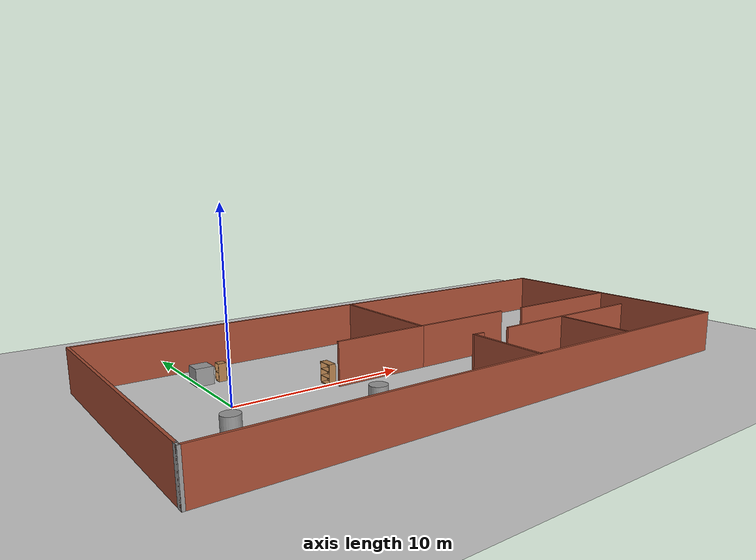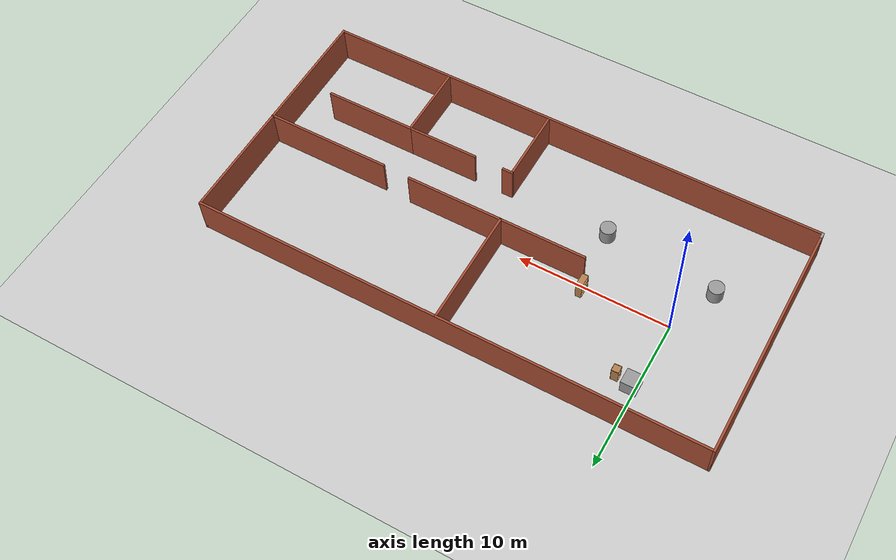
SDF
<sdf version="1.6">
 <world name="default">
  <light name="sun" type="directional">
   <pose>0 0 10 0 -0 0</pose>
   <diffuse>0.8 0.8 0.8 1</diffuse>
   <specular>0.2 0.2 0.2 1</specular>
   <attenuation>
    <range>1000</range>
    <constant>0.9</constant>
    <linear>0.01</linear>
    <quadratic>0.001</quadratic>
   </attenuation>
   <direction>-0.5 0.1 -0.9</direction>
  </light>
  <model name="ground_plane">
   <static>1</static>
   <link name="link">
    <collision name="collision">
     <geometry><plane><normal>0 0 1</normal><size>100 100</size></plane></geometry>
     <surface>
      <contact><collide_bitmask>65535</collide_bitmask></contact>
      <friction><ode><mu>100</mu><mu2>50</mu2></ode></friction>
     </surface>
    </collision>
    <visual name="visual">
     <cast_shadows>0</cast_shadows>
     <geometry><plane><normal>0 0 1</normal><size>100 100</size></plane></geometry>
     <material>
      <script><uri>file://media/materials/scripts/gazebo.material</uri><name>Gazebo/Grey</name></script>
     </material>
    </visual>
   </link>
  </model>
  <gravity>0 0 -9.8</gravity>
  <magnetic_field>6e-06 2.3e-05 -4.2e-05</magnetic_field>
  <atmosphere type="adiabatic"/>
  <physics name="default_physics" default="0" type="ode">
   <max_step_size>0.001</max_step_size>
   <real_time_factor>1</real_time_factor>
   <real_time_update_rate>1000</real_time_update_rate>
  </physics>
  <scene><ambient>0.4 0.4 0.4 1</ambient><background>0.7 0.7 0.7 1</background><shadows>1</shadows></scene>
  <audio><device>default</device></audio>
  <spherical_coordinates>
   <surface_model>EARTH_WGS84</surface_model>
   <latitude_deg>0</latitude_deg>
   <longitude_deg>0</longitude_deg>
   <elevation>0</elevation>
   <heading_deg>0</heading_deg>
  </spherical_coordinates>
  <model name="my_house2">
   <pose>11.157 -0.793133 0 0 -0 0</pose>
   <link name="Wall_1">
    <collision name="Wall_1_Collision">
     <geometry><box><size>15.75 0.15 2.5</size></box></geometry>
     <pose>0 0 1.25 0 -0 0</pose>
    </collision>
    <visual name="Wall_1_Visual">
     <pose>0 0 1.25 0 -0 0</pose>
     <geometry><box><size>15.75 0.15 2.5</size></box></geometry>
     <material>
      <script><uri>file://media/materials/scripts/gazebo.material</uri><name>Gazebo/Bricks</name></script>
      <ambient>1 1 1 1</ambient>
     </material>
     <meta><layer>0</layer></meta>
    </visual>
    <pose>-16.8 0.125 0 0 -0 1.5708</pose>
   </link>
   <link name="Wall_10">
    <collision name="Wall_10_Collision">
     <geometry><box><size>6.5 0.15 2.5</size></box></geometry>
     <pose>0 0 1.25 0 -0 0</pose>
    </collision>
    <visual name="Wall_10_Visual">
     <pose>0 0 1.25 0 -0 0</pose>
     <geometry><box><size>6.5 0.15 2.5</size></box></geometry>
     <material>
      <script><uri>file://media/materials/scripts/gazebo.material</uri><name>Gazebo/Bricks</name></script>
      <ambient>1 1 1 1</ambient>
     </material>
     <meta><layer>0</layer></meta>
    </visual>
    <pose>3.58417 0.31503 0 0 -0 0</pose>
   </link>
   <link name="Wall_16">
    <collision name="Wall_16_Collision">
     <geometry><box><size>8.25 0.15 2.5</size></box></geometry>
     <pose>0 0 1.25 0 -0 0</pose>
    </collision>
    <visual name="Wall_16_Visual">
     <pose>0 0 1.25 0 -0 0</pose>
     <geometry><box><size>8.25 0.15 2.5</size></box></geometry>
     <material>
      <script><uri>file://media/materials/scripts/gazebo.material</uri><name>Gazebo/Bricks</name></script>
      <ambient>1 1 1 1</ambient>
     </material>
     <meta><layer>0</layer></meta>
    </visual>
    <pose>12.7167 0.235668 0 0 -0 0</pose>
   </link>
   <link name="Wall_18">
    <collision name="Wall_18_Collision">
     <geometry><box><size>5 0.15 2.5</size></box></geometry>
     <pose>0 0 1.25 0 -0 0</pose>
    </collision>
    <visual name="Wall_18_Visual">
     <pose>0 0 1.25 0 -0 0</pose>
     <geometry><box><size>5 0.15 2.5</size></box></geometry>
     <material>
      <script><uri>file://media/materials/scripts/gazebo.material</uri><name>Gazebo/Bricks</name></script>
      <ambient>1 1 1 1</ambient>
     </material>
     <meta><layer>0</layer></meta>
    </visual>
    <pose>8.70781 -5.45986 0 0 -0 1.5708</pose>
   </link>
   <link name="Wall_19">
    <collision name="Wall_19_Collision">
     <geometry><box><size>6 0.15 2.5</size></box></geometry>
     <pose>0 0 1.25 0 -0 0</pose>
    </collision>
    <visual name="Wall_19_Visual">
     <pose>0 0 1.25 0 -0 0</pose>
     <geometry><box><size>6 0.15 2.5</size></box></geometry>
     <material>
      <script><uri>file://media/materials/scripts/gazebo.material</uri><name>Gazebo/Bricks</name></script>
      <ambient>1 1 1 1</ambient>
     </material>
     <meta><layer>0</layer></meta>
    </visual>
    <pose>11.6328 -3.03486 0 0 -0 0</pose>
   </link>
   <link name="Wall_2">
    <collision name="Wall_2_Collision">
     <geometry><box><size>33.75 0.15 2.5</size></box></geometry>
     <pose>0 0 1.25 0 -0 0</pose>
    </collision>
    <visual name="Wall_2_Visual">
     <pose>0 0 1.25 0 -0 0</pose>
     <geometry><box><size>33.75 0.15 2.5</size></box></geometry>
     <material>
      <script><uri>file://media/materials/scripts/gazebo.material</uri><name>Gazebo/Bricks</name></script>
      <ambient>1 1 1 1</ambient>
     </material>
     <meta><layer>0</layer></meta>
    </visual>
    <pose>-1e-06 7.925 0 0 -0 0</pose>
   </link>
   <link name="Wall_26">
    <collision name="Wall_26_Collision">
     <geometry><box><size>4.75 0.15 2.5</size></box></geometry>
     <pose>0 0 1.25 0 -0 0</pose>
    </collision>
    <visual name="Wall_26_Visual">
     <pose>0 0 1.25 0 -0 0</pose>
     <geometry><box><size>4.75 0.15 2.5</size></box></geometry>
     <material>
      <script><uri>file://media/materials/scripts/gazebo.material</uri><name>Gazebo/Bricks</name></script>
      <ambient>1 1 1 1</ambient>
     </material>
     <meta><layer>0</layer></meta>
    </visual>
    <pose>6.40781 -3.03486 0 0 -0 3.14159</pose>
   </link>
   <link name="Wall_28">
    <collision name="Wall_28_Collision">
     <geometry><box><size>5 0.15 2.5</size></box></geometry>
     <pose>0 0 1.25 0 -0 0</pose>
    </collision>
    <visual name="Wall_28_Visual">
     <pose>0 0 1.25 0 -0 0</pose>
     <geometry><box><size>5 0.15 2.5</size></box></geometry>
     <material>
      <script><uri>file://media/materials/scripts/gazebo.material</uri><name>Gazebo/Bricks</name></script>
      <ambient>1 1 1 1</ambient>
     </material>
     <meta><layer>0</layer></meta>
    </visual>
    <pose>1.46626 -5.46713 0 0 -0 -1.5708</pose>
   </link>
   <link name="Wall_3">
    <collision name="Wall_3_Collision">
     <geometry><box><size>16 0.15 2.5</size></box></geometry>
     <pose>0 0 1.25 0 -0 0</pose>
    </collision>
    <visual name="Wall_3_Visual">
     <pose>0 0 1.25 0 -0 0</pose>
     <geometry><box><size>16 0.15 2.5</size></box></geometry>
     <material>
      <script><uri>file://media/materials/scripts/gazebo.material</uri><name>Gazebo/Bricks</name></script>
      <ambient>1 1 1 1</ambient>
     </material>
     <meta><layer>0</layer></meta>
    </visual>
    <pose>16.8 -0 0 0 -0 -1.5708</pose>
   </link>
   <link name="Wall_30">
    <collision name="Wall_30_Collision">
     <geometry><box><size>0.75 0.15 2.5</size></box></geometry>
     <pose>0 0 1.25 0 -0 0</pose>
    </collision>
    <visual name="Wall_30_Visual">
     <pose>0 0 1.25 0 -0 0</pose>
     <geometry><box><size>0.75 0.15 2.5</size></box></geometry>
     <material>
      <script><uri>file://media/materials/scripts/gazebo.material</uri><name>Gazebo/Bricks</name></script>
      <ambient>1 1 1 1</ambient>
     </material>
     <meta><layer>0</layer></meta>
    </visual>
    <pose>1.76626 -3.04212 0 0 -0 0</pose>
   </link>
   <link name="Wall_4">
    <collision name="Wall_4_Collision">
     <geometry><box><size>33.75 0.15 2.5</size></box></geometry>
     <pose>0 0 1.25 0 -0 0</pose>
    </collision>
    <visual name="Wall_4_Visual">
     <pose>0 0 1.25 0 -0 0</pose>
     <geometry><box><size>33.75 0.15 2.5</size></box></geometry>
     <material>
      <script><uri>file://media/materials/scripts/gazebo.material</uri><name>Gazebo/Bricks</name></script>
      <ambient>1 1 1 1</ambient>
     </material>
     <meta><layer>0</layer></meta>
    </visual>
    <pose>-1e-06 -7.925 0 0 -0 3.14159</pose>
   </link>
   <link name="Wall_5">
    <collision name="Wall_5_Collision">
     <geometry><box><size>0.4 0.15 2.5</size></box></geometry>
     <pose>0 0 1.25 0 -0 0</pose>
    </collision>
    <visual name="Wall_5_Visual">
     <pose>0 0 1.25 0 -0 0</pose>
     <geometry><box><size>0.4 0.15 2.5</size></box></geometry>
     <material>
      <script><uri>file://media/materials/scripts/gazebo.material</uri><name>Gazebo/Grey</name></script>
      <ambient>1 1 1 1</ambient>
     </material>
     <meta><layer>0</layer></meta>
    </visual>
    <pose>-16.8 -7.8 0 0 -0 1.5708</pose>
   </link>
   <link name="Wall_7">
    <collision name="Wall_7_Collision">
     <geometry><box><size>7.75 0.15 2.5</size></box></geometry>
     <pose>0 0 1.25 0 -0 0</pose>
    </collision>
    <visual name="Wall_7_Visual">
     <pose>0 0 1.25 0 -0 0</pose>
     <geometry><box><size>7.75 0.15 2.5</size></box></geometry>
     <material>
      <script><uri>file://media/materials/scripts/gazebo.material</uri><name>Gazebo/Bricks</name></script>
      <ambient>1 1 1 1</ambient>
     </material>
     <meta><layer>0</layer></meta>
    </visual>
    <pose>0.409171 4.11503 0 0 -0 -1.5708</pose>
   </link>
   <link name="Wall_8">
    <collision name="Wall_8_Collision">
     <geometry><box><size>5.75 0.15 2.5</size></box></geometry>
     <pose>0 0 1.25 0 -0 0</pose>
    </collision>
    <visual name="Wall_8_Visual">
     <pose>0 0 1.25 0 -0 0</pose>
     <geometry><box><size>5.75 0.15 2.5</size></box></geometry>
     <material>
      <script><uri>file://media/materials/scripts/gazebo.material</uri><name>Gazebo/Bricks</name></script>
      <ambient>1 1 1 1</ambient>
     </material>
     <meta><layer>0</layer></meta>
    </visual>
    <pose>-2.39083 0.31503 0 0 -0 3.14159</pose>
   </link>
   <static>1</static>
  </model>
  <model name="unit_box">
   <pose>0.316068 4.5991 0.499995 -1e-05 -0 -0</pose>
   <link name="link">
    <inertial>
     <mass>1</mass>
     <inertia>
      <ixx>0.166667</ixx>
      <ixy>0</ixy>
      <ixz>0</ixz>
      <iyy>0.166667</iyy>
      <iyz>0</iyz>
      <izz>0.166667</izz>
     </inertia>
    </inertial>
    <collision name="collision"><geometry><box><size>1 1 1</size></box></geometry></collision>
    <visual name="visual">
     <geometry><box><size>1 1 1</size></box></geometry>
     <material>
      <script><name>Gazebo/Grey</name><uri>file://media/materials/scripts/gazebo.material</uri></script>
     </material>
    </visual>
   </link>
  </model>
  <model name="unit_cylinder">
   <pose>-1.43434 -3.22931 0.499998 3e-06 -3e-06 0</pose>
   <link name="link">
    <inertial>
     <mass>1</mass>
     <inertia><ixx>0.145833</ixx><ixy>0</ixy><ixz>0</ixz><iyy>0.145833</iyy><iyz>0</iyz><izz>0.125</izz></inertia>
    </inertial>
    <collision name="collision">
     <geometry><cylinder><radius>0.5</radius><length>1</length></cylinder></geometry>
    </collision>
    <visual name="visual">
     <geometry><cylinder><radius>0.5</radius><length>1</length></cylinder></geometry>
     <material>
      <script><name>Gazebo/Grey</name><uri>file://media/materials/scripts/gazebo.material</uri></script>
     </material>
    </visual>
   </link>
  </model>
  <model name="unit_cylinder_0">
   <pose>6.04245 -3.97563 0.499998 3e-06 -3e-06 0</pose>
   <link name="link">
    <inertial>
     <mass>1</mass>
     <inertia><ixx>0.145833</ixx><ixy>0</ixy><ixz>0</ixz><iyy>0.145833</iyy><iyz>0</iyz><izz>0.125</izz></inertia>
    </inertial>
    <collision name="collision">
     <geometry><cylinder><radius>0.5</radius><length>1</length></cylinder></geometry>
    </collision>
    <visual name="visual">
     <geometry><cylinder><radius>0.5</radius><length>1</length></cylinder></geometry>
     <material>
      <script><name>Gazebo/Grey</name><uri>file://media/materials/scripts/gazebo.material</uri></script>
     </material>
    </visual>
   </link>
  </model>
  <model name="cabinet">
   <static>1</static>
   <link name="cabinet_bottom_plate">
    <inertial>
     <pose>0 0 -1 0 -0 0</pose>
     <inertia><ixx>2.05</ixx><ixy>0</ixy><ixz>0</ixz><iyy>2.05</iyy><iyz>0</iyz><izz>2.05</izz></inertia>
     <mass>25</mass>
    </inertial>
    <collision name="cabinet_bottom_plate_geom">
     <pose>0 0 0.01 0 -0 0</pose>
     <geometry><box><size>0.45 0.45 0.02</size></box></geometry>
    </collision>
    <visual name="cabinet_bottom_plate_geom_visual">
     <pose>0 0 0.01 0 -0 0</pose>
     <geometry><box><size>0.45 0.45 0.02</size></box></geometry>
     <material>
      <script><uri>file://media/materials/scripts/gazebo.material</uri><name>Gazebo/Wood</name></script>
     </material>
    </visual>
    <collision name="cabinet_bottom_plate_geom_cabinet_back_plate">
     <pose>0.235 0 0.51 0 -0 0</pose>
     <geometry><box><size>0.02 0.45 1.02</size></box></geometry>
    </collision>
    <visual name="cabinet_bottom_plate_geom_cabinet_back_plate_visual">
     <pose>0.235 0 0.51 0 -0 0</pose>
     <geometry><box><size>0.02 0.45 1.02</size></box></geometry>
     <material>
      <script><uri>file://media/materials/scripts/gazebo.material</uri><name>Gazebo/Wood</name></script>
     </material>
    </visual>
    <collision name="cabinet_bottom_plate_geom_cabinet_left_plate">
     <pose>0 0.235 0.51 0 -0 0</pose>
     <geometry><box><size>0.45 0.02 1.02</size></box></geometry>
    </collision>
    <visual name="cabinet_bottom_plate_geom_cabinet_left_plate_visual">
     <pose>0 0.235 0.51 0 -0 0</pose>
     <geometry><box><size>0.45 0.02 1.02</size></box></geometry>
     <material>
      <script><uri>file://media/materials/scripts/gazebo.material</uri><name>Gazebo/Wood</name></script>
     </material>
    </visual>
    <collision name="cabinet_bottom_plate_geom_cabinet_middle_plate">
     <pose>0 0 0.51 0 -0 0</pose>
     <geometry><box><size>0.45 0.45 0.02</size></box></geometry>
    </collision>
    <visual name="cabinet_bottom_plate_geom_cabinet_middle_plate_visual">
     <pose>0 0 0.51 0 -0 0</pose>
     <geometry><box><size>0.45 0.45 0.02</size></box></geometry>
     <material>
      <script><uri>file://media/materials/scripts/gazebo.material</uri><name>Gazebo/Wood</name></script>
     </material>
    </visual>
    <collision name="cabinet_bottom_plate_geom_cabinet_right_plate">
     <pose>0 -0.235 0.51 0 -0 0</pose>
     <geometry><box><size>0.45 0.02 1.02</size></box></geometry>
    </collision>
    <visual name="cabinet_bottom_plate_geom_cabinet_right_plate_visual">
     <pose>0 -0.235 0.51 0 -0 0</pose>
     <geometry><box><size>0.45 0.02 1.02</size></box></geometry>
     <material>
      <script><uri>file://media/materials/scripts/gazebo.material</uri><name>Gazebo/Wood</name></script>
     </material>
    </visual>
    <collision name="cabinet_bottom_plate_geom_cabinet_top_plate">
     <pose>0 0 1.01 0 -0 0</pose>
     <geometry><box><size>0.45 0.45 0.02</size></box></geometry>
    </collision>
    <visual name="cabinet_bottom_plate_geom_cabinet_top_plate_visual">
     <pose>0 0 1.01 0 -0 0</pose>
     <geometry><box><size>0.45 0.45 0.02</size></box></geometry>
     <material>
      <script><uri>file://media/materials/scripts/gazebo.material</uri><name>Gazebo/Wood</name></script>
     </material>
    </visual>
   </link>
   <pose>1.35187 4.44791 0 0 -0 0</pose>
  </model>
  <model name="bookshelf">
   <static>1</static>
   <link name="link">
    <inertial><mass>1</mass></inertial>
    <collision name="back">
     <pose>0 0.005 0.6 0 -0 0</pose>
     <geometry><box><size>0.9 0.01 1.2</size></box></geometry>
    </collision>
    <visual name="visual1">
     <pose>0 0.005 0.6 0 -0 0</pose>
     <geometry><box><size>0.9 0.01 1.2</size></box></geometry>
     <material>
      <script><uri>file://media/materials/scripts/gazebo.material</uri><name>Gazebo/Wood</name></script>
     </material>
    </visual>
    <collision name="left_side">
     <pose>0.45 -0.195 0.6 0 -0 0</pose>
     <geometry><box><size>0.02 0.4 1.2</size></box></geometry>
    </collision>
    <visual name="visual2">
     <pose>0.45 -0.195 0.6 0 -0 0</pose>
     <geometry><box><size>0.02 0.4 1.2</size></box></geometry>
     <material>
      <script><uri>file://media/materials/scripts/gazebo.material</uri><name>Gazebo/Wood</name></script>
     </material>
    </visual>
    <collision name="right_side">
     <pose>-0.45 -0.195 0.6 0 -0 0</pose>
     <geometry><box><size>0.02 0.4 1.2</size></box></geometry>
    </collision>
    <visual name="visual3">
     <pose>-0.45 -0.195 0.6 0 -0 0</pose>
     <geometry><box><size>0.02 0.4 1.2</size></box></geometry>
     <material>
      <script><uri>file://media/materials/scripts/gazebo.material</uri><name>Gazebo/Wood</name></script>
     </material>
    </visual>
    <collision name="bottom">
     <pose>0 -0.195 0.03 0 -0 0</pose>
     <geometry><box><size>0.88 0.4 0.06</size></box></geometry>
    </collision>
    <visual name="visual4">
     <pose>0 -0.195 0.03 0 -0 0</pose>
     <geometry><box><size>0.88 0.4 0.06</size></box></geometry>
     <material>
      <script><uri>file://media/materials/scripts/gazebo.material</uri><name>Gazebo/Wood</name></script>
     </material>
    </visual>
    <collision name="top">
     <pose>0 -0.195 1.19 0 -0 0</pose>
     <geometry><box><size>0.88 0.4 0.02</size></box></geometry>
    </collision>
    <visual name="visual5">
     <pose>0 -0.195 1.19 0 -0 0</pose>
     <geometry><box><size>0.88 0.4 0.02</size></box></geometry>
     <material>
      <script><uri>file://media/materials/scripts/gazebo.material</uri><name>Gazebo/Wood</name></script>
     </material>
    </visual>
    <collision name="low_shelf">
     <pose>0 -0.195 0.43 0 -0 0</pose>
     <geometry><box><size>0.88 0.4 0.02</size></box></geometry>
    </collision>
    <visual name="visual6">
     <pose>0 -0.195 0.43 0 -0 0</pose>
     <geometry><box><size>0.88 0.4 0.02</size></box></geometry>
     <material>
      <script><uri>file://media/materials/scripts/gazebo.material</uri><name>Gazebo/Wood</name></script>
     </material>
    </visual>
    <collision name="high_shelf">
     <pose>0 -0.195 0.8 0 -0 0</pose>
     <geometry><box><size>0.88 0.4 0.02</size></box></geometry>
    </collision>
    <visual name="visual7">
     <pose>0 -0.195 0.8 0 -0 0</pose>
     <geometry><box><size>0.88 0.4 0.02</size></box></geometry>
     <material>
      <script><uri>file://media/materials/scripts/gazebo.material</uri><name>Gazebo/Wood</name></script>
     </material>
    </visual>
   </link>
   <pose>5.87046 0.256398 0 0 0 -1.57412</pose>
  </model>
 </world>
</sdf>
